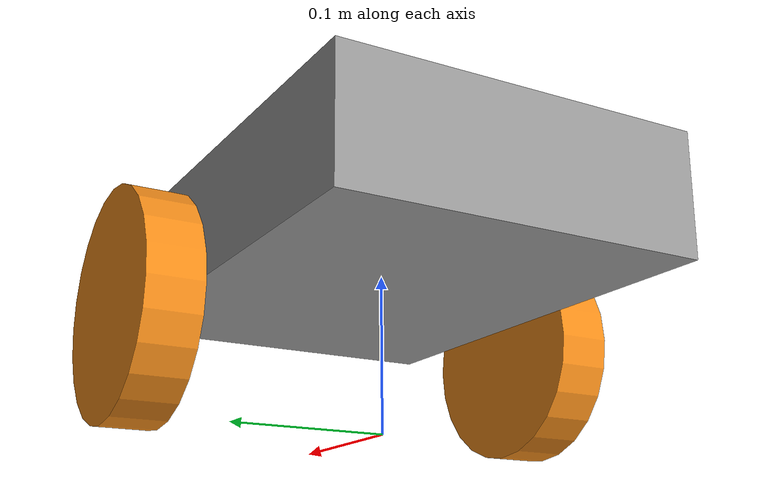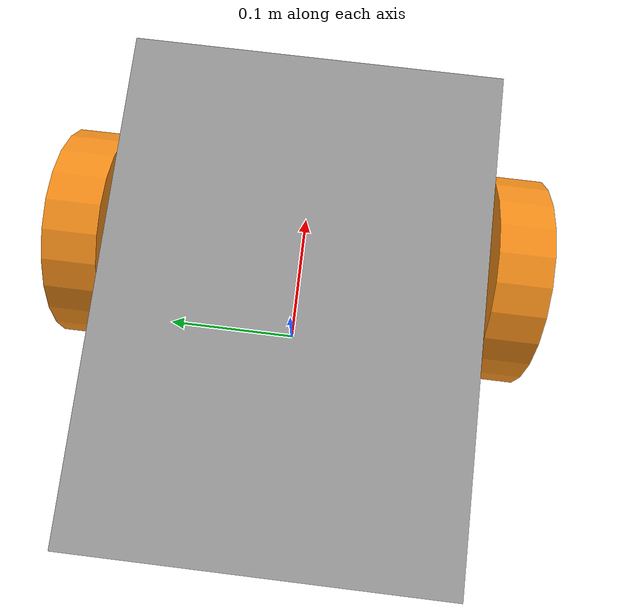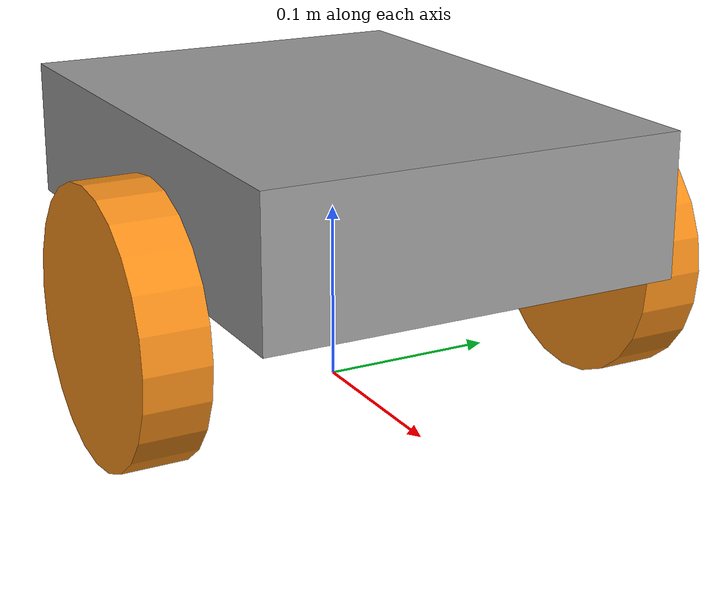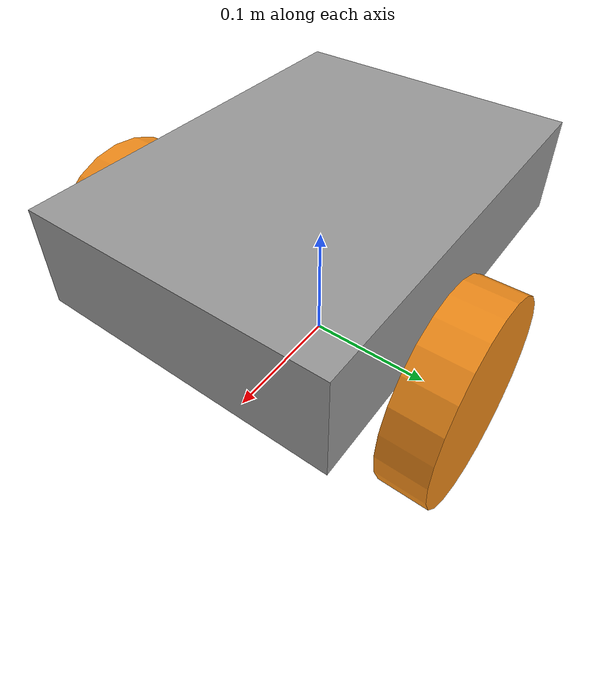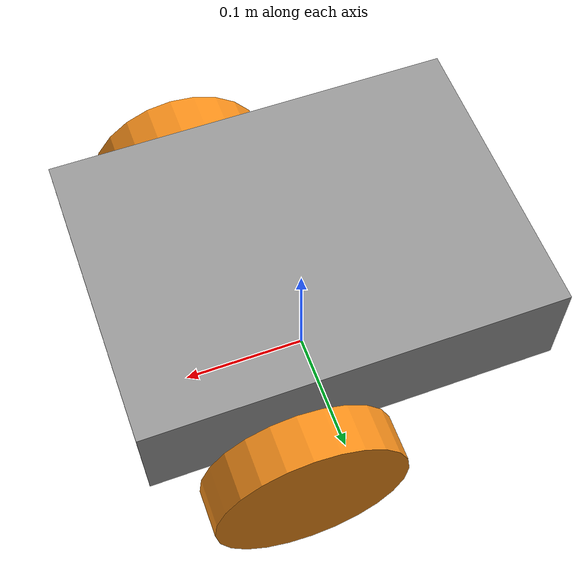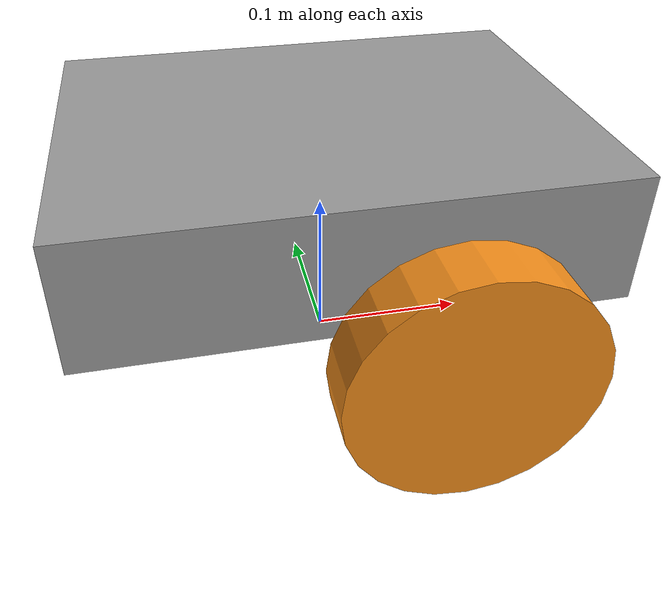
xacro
<?xml version="1.0"?>
<robot name="scout">

  <!-- Include the base definition -->
  <include filename="$(find scout_description)/urdf/base.urdf.xacro" />

  <!-- Include materials (colors and meshes) -->
  <include filename="$(find scout_description)/urdf/materials.urdf.xacro" />

  <!-- Add the base to the model -->
  <robot_base name="base" color="Orange" />

</robot>

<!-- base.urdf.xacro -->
<robot>

  <property name="ground_clearance" value="0.125" />
  <property name="wheel_offset_x" value="0.05" />
  <property name="wheel_offset_y" value="0.143" />
  <property name="wheel_length" value="0.035" />
  <property name="wheel_radius" value="0.073" />
  <property name="base_size_x" value="0.31" />
  <property name="base_size_y" value="0.23" />
  <property name="base_size_z" value="0.078" />

  <!-- define a drive wheel -->
  <macro name="drive_wheel" params="suffix parent reflect color">
    <joint name="${parent}_${suffix}_wheel_joint" type="continuous">
      <axis xyz="0 0 1" />
      <origin xyz="${wheel_offset_x} ${reflect*wheel_offset_y} ${wheel_radius}" rpy="${reflect*1.57} 0 0" />
      <parent link="${parent}_link"/>
      <child link="${parent}_${suffix}_wheel_link"/>
    </joint>
    <link name="${parent}_${suffix}_wheel_link">
      <visual>
        <origin xyz="0 0 0" rpy="0 0 0" />
        <geometry>
          <cylinder radius="${wheel_radius}" length="${wheel_length}"/>
        </geometry>
        <material name="${color}" />
      </visual>
    </link>
  </macro>

  <!-- The xacro macro robot_base contains: base and wheels -->
  <macro name="robot_base" params="name color">
    <link name="${name}_link">
      <visual>
        <origin xyz="0 0 ${ground_clearance}" rpy="0 0 0" />
        <geometry>
          <box size="${base_size_x} ${base_size_y} ${base_size_z}" />
        </geometry>
        <material name="Grey" />
      </visual>
      <collision>
        <origin xyz="-${wheel_offset_x} 0 ${base_size_z/2}" rpy="0 0 0" />
        <geometry>
          <box size="${base_size_x} ${base_size_y} ${base_size_z}" />
        </geometry>
      </collision>
    </link>

    <!-- drive wheels -->
    <drive_wheel parent="${name}" suffix="l" reflect="1" color="${color}"/>
    <drive_wheel parent="${name}" suffix="r" reflect="-1" color="${color}"/>
  </macro>

</robot>
